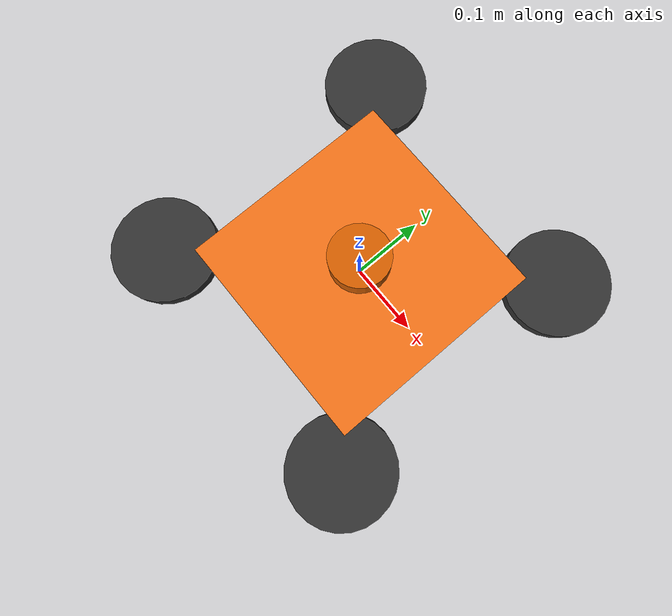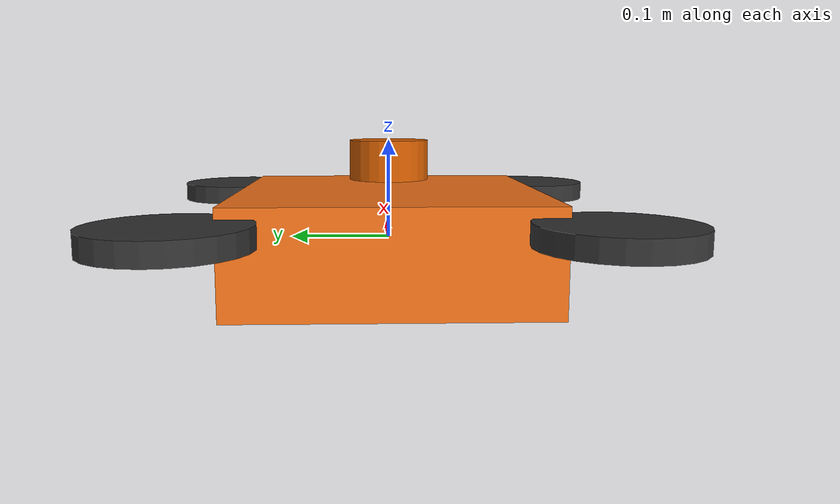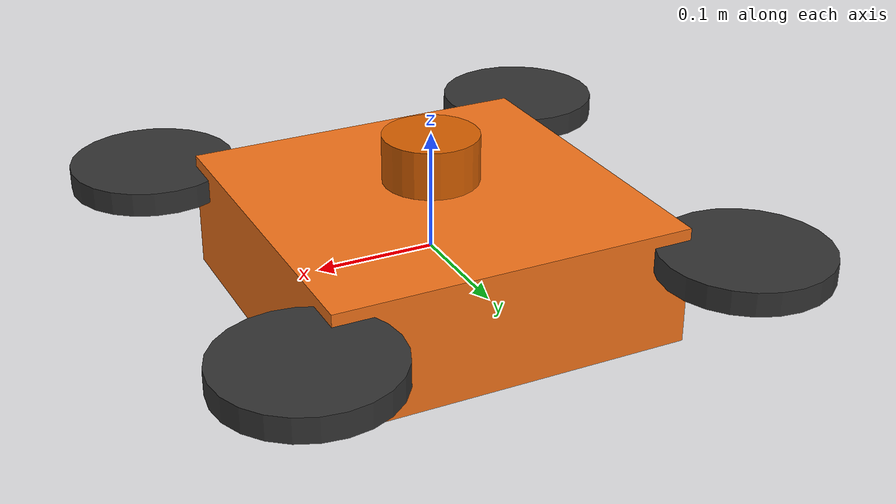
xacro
<?xml version="1.0"?>
<robot name="writer_drone" xmlns:xacro="http://www.ros.org/wiki/xacro">
  <xacro:arg name="ns" default="writer"/>

  <link name="base_link">
    <visual>
      <geometry><box size="0.30 0.30 0.10"/></geometry>
      <material name="orange"><color rgba="0.95 0.45 0.1 1"/></material>
    </visual>
    <collision>
      <geometry><box size="0.30 0.30 0.10"/></geometry>
    </collision>
    <inertial>
      <mass value="1.2"/>
      <inertia ixx="0.01" ixy="0" ixz="0" iyy="0.01" iyz="0" izz="0.02"/>
    </inertial>
  </link>

  <xacro:macro name="arm" params="name x y">
    <link name="${name}">
      <visual><geometry><cylinder radius="0.07" length="0.02"/></geometry>
        <material name="gray"><color rgba="0.2 0.2 0.2 1"/></material></visual>
    </link>
    <joint name="${name}_joint" type="fixed">
      <parent link="base_link"/><child link="${name}"/>
      <origin xyz="${x} ${y} 0.03" rpy="0 0 0"/>
    </joint>
  </xacro:macro>
  <xacro:arm name="rotor_fl" x="0.18" y="0.18"/>
  <xacro:arm name="rotor_fr" x="0.18" y="-0.18"/>
  <xacro:arm name="rotor_bl" x="-0.18" y="0.18"/>
  <xacro:arm name="rotor_br" x="-0.18" y="-0.18"/>

  <link name="lidar_link">
    <visual><geometry><cylinder radius="0.04" length="0.04"/></geometry></visual>
  </link>
  <joint name="lidar_joint" type="fixed">
    <parent link="base_link"/><child link="lidar_link"/>
    <origin xyz="0 0 0.08" rpy="0 0 0"/>
  </joint>

  <gazebo reference="base_link">
    <gravity>0</gravity>
  </gazebo>

  <gazebo reference="lidar_link">
    <sensor type="ray" name="writer_lidar">
      <pose>0 0 0 0 0 0</pose>
      <visualize>false</visualize>
      <update_rate>10</update_rate>
      <ray>
        <scan><horizontal><samples>360</samples><resolution>1</resolution>
          <min_angle>-3.14159</min_angle><max_angle>3.14159</max_angle></horizontal></scan>
        <range><min>0.12</min><max>12.0</max><resolution>0.02</resolution></range>
      </ray>
      <plugin name="writer_lidar_plugin" filename="libgazebo_ros_ray_sensor.so">
        <ros><namespace>/$(arg ns)</namespace><remapping>~/out:=scan</remapping></ros>
        <output_type>sensor_msgs/LaserScan</output_type>
        <frame_name>$(arg ns)/lidar_link</frame_name>
      </plugin>
    </sensor>
  </gazebo>

  <gazebo>
    <plugin name="writer_planar_move" filename="libgazebo_ros_planar_move.so">
      <ros><namespace>/$(arg ns)</namespace></ros>
      <command_topic>cmd_vel</command_topic>
      <odometry_topic>odom</odometry_topic>
      <odometry_frame>$(arg ns)/odom</odometry_frame>
      <robot_base_frame>$(arg ns)/base_link</robot_base_frame>
      <publish_odom>true</publish_odom>
      <publish_odom_tf>true</publish_odom_tf>
      <update_rate>30</update_rate>
    </plugin>
  </gazebo>
</robot>
